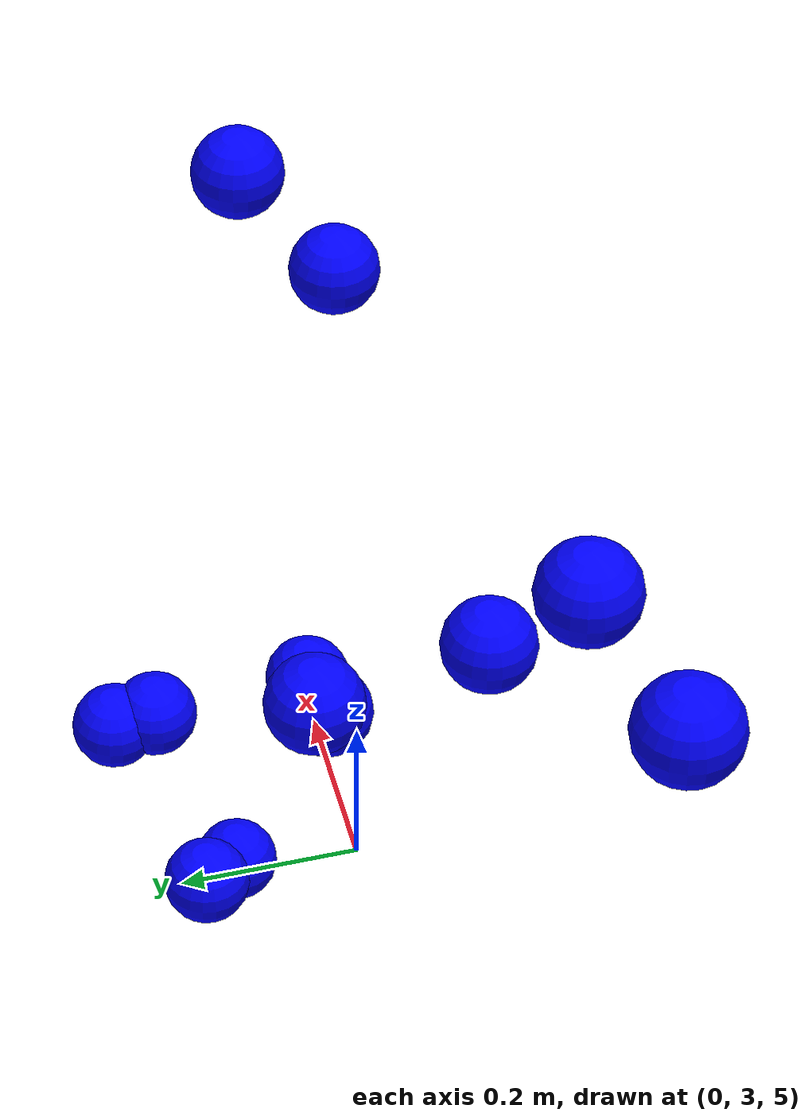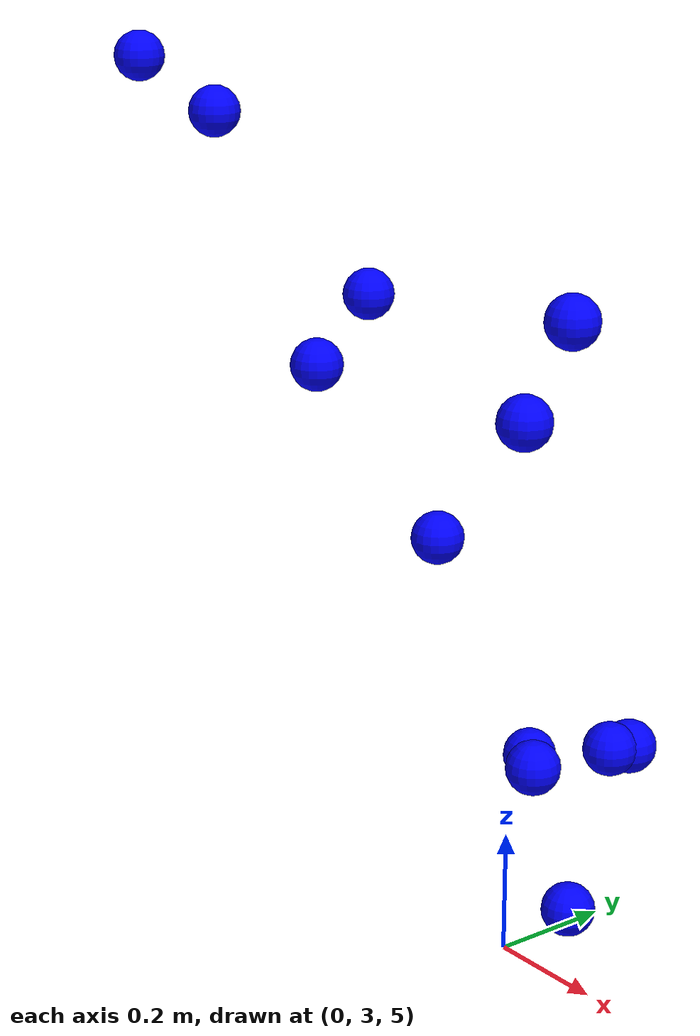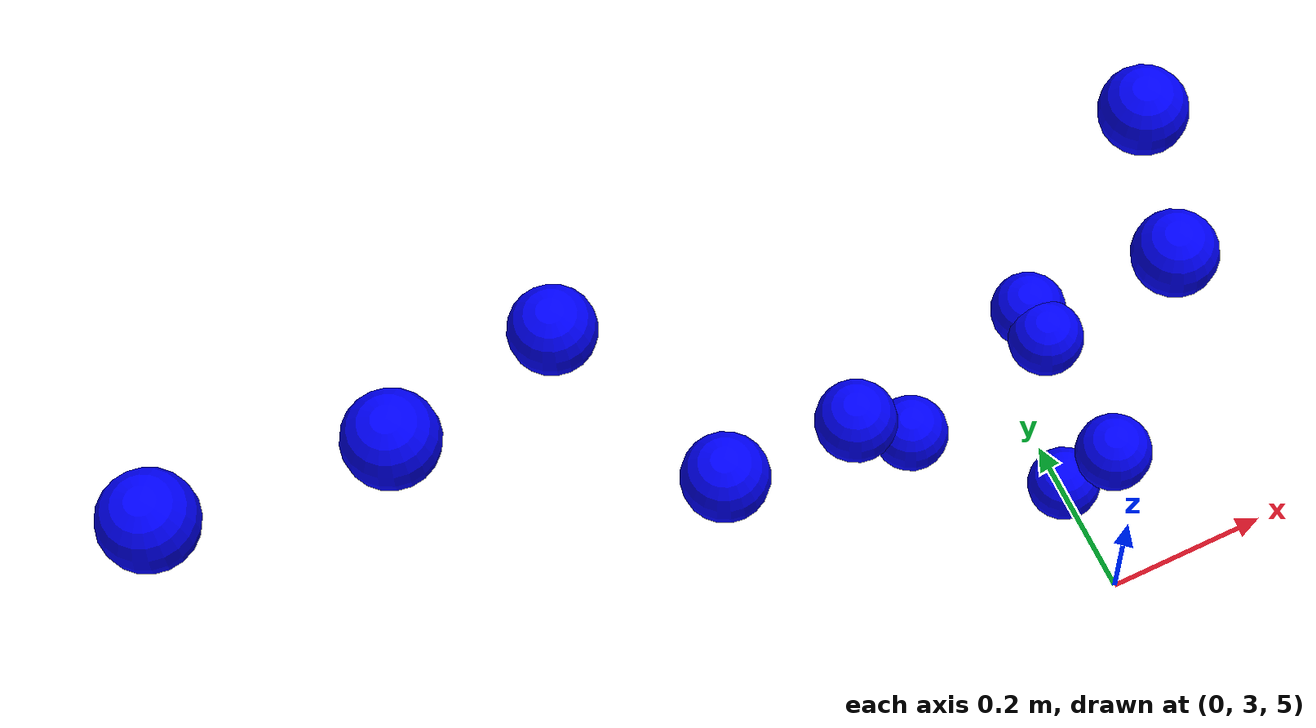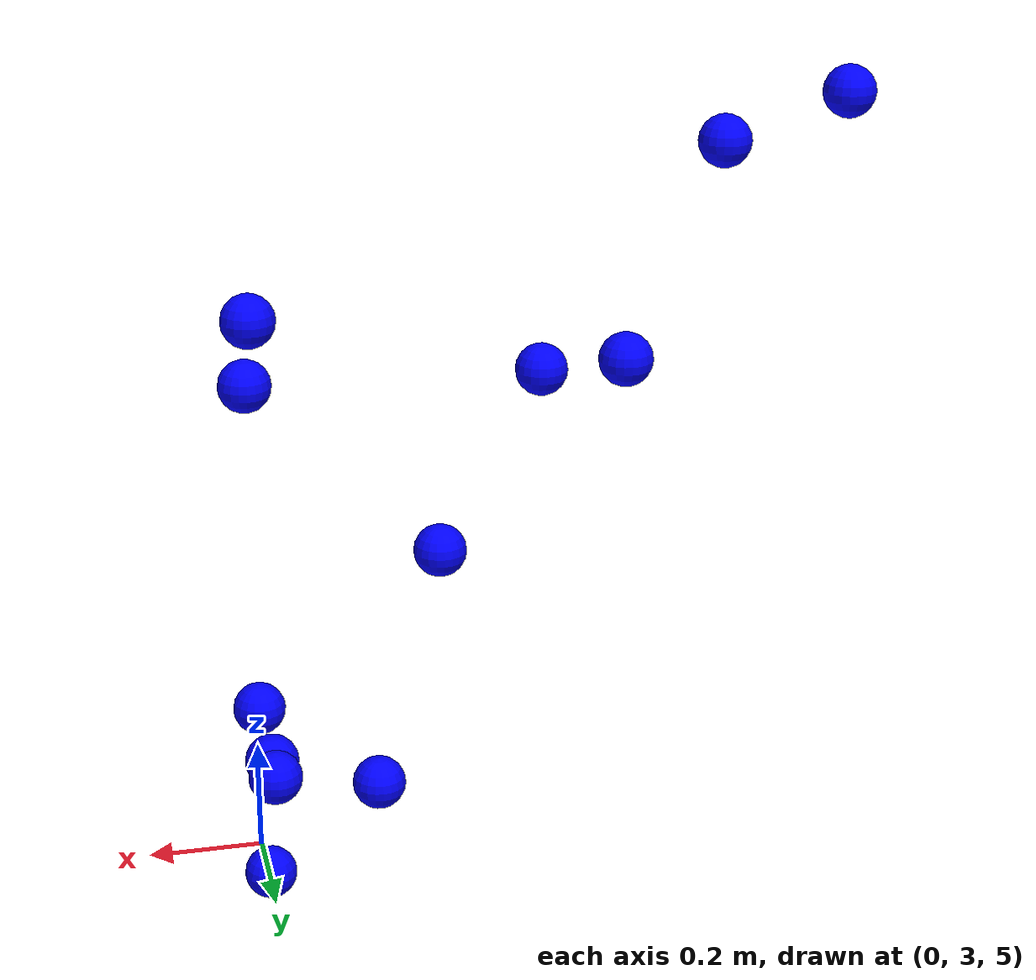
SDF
<sdf version="1.10">
 <world name="sphere">
  <model name="ground_plane">
   <static>true</static>
   <link name="link">
    <collision name="collision">
     <geometry><plane><normal>0 0 1</normal><size>100 100</size></plane></geometry>
    </collision>
    <visual name="visual">
     <geometry><plane><normal>0 0 1</normal><size>100 100</size></plane></geometry>
     <material>
      <ambient>0.800000012 0.800000012 0.800000012 1</ambient>
      <diffuse>0.800000012 0.800000012 0.800000012 1</diffuse>
      <specular>0.800000012 0.800000012 0.800000012 1</specular>
     </material>
    </visual>
    <inertial>
     <mass>1</mass>
     <inertia><ixx>1</ixx><ixy>0</ixy><ixz>0</ixz><iyy>1</iyy><iyz>0</iyz><izz>1</izz></inertia>
    </inertial>
   </link>
  </model>
  <model name="sphere_00">
   <pose>-0.8101000189781189 3.01882004737854 6.2474203109741211 0 0 0</pose>
   <link name="sphere_link">
    <inertial>
     <inertia>
      <ixx>0.10000000000000001</ixx>
      <ixy>0</ixy>
      <ixz>0</ixz>
      <iyy>0.10000000000000001</iyy>
      <iyz>0</iyz>
      <izz>0.10000000000000001</izz>
     </inertia>
     <mass>1</mass>
    </inertial>
    <collision name="sphere_collision">
     <geometry><sphere><radius>0.044999999999999998</radius></sphere></geometry>
    </collision>
    <visual name="sphere_visual">
     <geometry><sphere><radius>0.044999999999999998</radius></sphere></geometry>
     <material><ambient>0 0 1 1</ambient><diffuse>0 0 1 1</diffuse><specular>0 0 1 1</specular></material>
    </visual>
   </link>
   <static>false</static>
   <self_collide>true</self_collide>
  </model>
  <model name="sphere_01">
   <pose>-0.30862641334533691 3.1076400279998779 5.5938301086425781 0 0 0</pose>
   <link name="sphere_link">
    <inertial>
     <inertia>
      <ixx>0.10000000000000001</ixx>
      <ixy>0</ixy>
      <ixz>0</ixz>
      <iyy>0.10000000000000001</iyy>
      <iyz>0</iyz>
      <izz>0.10000000000000001</izz>
     </inertia>
     <mass>1</mass>
    </inertial>
    <collision name="sphere_collision">
     <geometry><sphere><radius>0.044999999999999998</radius></sphere></geometry>
    </collision>
    <visual name="sphere_visual">
     <geometry><sphere><radius>0.044999999999999998</radius></sphere></geometry>
     <material><ambient>0 0 1 1</ambient><diffuse>0 0 1 1</diffuse><specular>0 0 1 1</specular></material>
    </visual>
   </link>
   <static>false</static>
   <self_collide>true</self_collide>
  </model>
  <model name="sphere_02">
   <pose>-0.18142400681972504 3.2076399326324463 5.2198047637939453 0 0 0</pose>
   <link name="sphere_link">
    <inertial>
     <inertia>
      <ixx>0.10000000000000001</ixx>
      <ixy>0</ixy>
      <ixz>0</ixz>
      <iyy>0.10000000000000001</iyy>
      <iyz>0</iyz>
      <izz>0.10000000000000001</izz>
     </inertia>
     <mass>1</mass>
    </inertial>
    <collision name="sphere_collision">
     <geometry><sphere><radius>0.044999999999999998</radius></sphere></geometry>
    </collision>
    <visual name="sphere_visual">
     <geometry><sphere><radius>0.044999999999999998</radius></sphere></geometry>
     <material><ambient>0 0 1 1</ambient><diffuse>0 0 1 1</diffuse><specular>0 0 1 1</specular></material>
    </visual>
   </link>
   <static>false</static>
   <self_collide>true</self_collide>
  </model>
  <model name="sphere_05">
   <pose>0 3.023277759552002 5.8801798820495605 0 0 0</pose>
   <link name="sphere_link">
    <inertial>
     <inertia>
      <ixx>0.10000000000000001</ixx>
      <ixy>0</ixy>
      <ixz>0</ixz>
      <iyy>0.10000000000000001</iyy>
      <iyz>0</iyz>
      <izz>0.10000000000000001</izz>
     </inertia>
     <mass>1</mass>
    </inertial>
    <collision name="sphere_collision">
     <geometry><sphere><radius>0.044999999999999998</radius></sphere></geometry>
    </collision>
    <visual name="sphere_visual">
     <geometry><sphere><radius>0.044999999999999998</radius></sphere></geometry>
     <material><ambient>0 0 1 1</ambient><diffuse>0 0 1 1</diffuse><specular>0 0 1 1</specular></material>
    </visual>
   </link>
   <static>false</static>
   <self_collide>true</self_collide>
  </model>
  <model name="sphere_08">
   <pose>0 3.0543978214263916 5.3013801574707031 0 0 0</pose>
   <link name="sphere_link">
    <inertial>
     <inertia>
      <ixx>0.10000000000000001</ixx>
      <ixy>0</ixy>
      <ixz>0</ixz>
      <iyy>0.10000000000000001</iyy>
      <iyz>0</iyz>
      <izz>0.10000000000000001</izz>
     </inertia>
     <mass>1</mass>
    </inertial>
    <collision name="sphere_collision">
     <geometry><sphere><radius>0.044999999999999998</radius></sphere></geometry>
    </collision>
    <visual name="sphere_visual">
     <geometry><sphere><radius>0.044999999999999998</radius></sphere></geometry>
     <material><ambient>0 0 1 1</ambient><diffuse>0 0 1 1</diffuse><specular>0 0 1 1</specular></material>
    </visual>
   </link>
   <static>false</static>
   <self_collide>true</self_collide>
  </model>
  <model name="sphere_09">
   <pose>-0.50494199991226196 3.0061700344085693 5.8660669326782227 0 0 0</pose>
   <link name="sphere_link">
    <inertial>
     <inertia>
      <ixx>0.10000000000000001</ixx>
      <ixy>0</ixy>
      <ixz>0</ixz>
      <iyy>0.10000000000000001</iyy>
      <iyz>0</iyz>
      <izz>0.10000000000000001</izz>
     </inertia>
     <mass>1</mass>
     <pose>0 0 0.69999999999999996 0 0 0</pose>
    </inertial>
    <collision name="sphere_collision">
     <geometry><sphere><radius>0.044999999999999998</radius></sphere></geometry>
    </collision>
    <visual name="sphere_visual">
     <geometry><sphere><radius>0.044999999999999998</radius></sphere></geometry>
     <material><ambient>0 0 1 1</ambient><diffuse>0 0 1 1</diffuse><specular>0 0 1 1</specular></material>
    </visual>
   </link>
   <static>false</static>
   <self_collide>true</self_collide>
  </model>
  <model name="sphere_10">
   <pose>0 3.2213499546051025 5.2891402244567871 0 0 0</pose>
   <link name="sphere_link">
    <inertial>
     <inertia>
      <ixx>0.10000000000000001</ixx>
      <ixy>0</ixy>
      <ixz>0</ixz>
      <iyy>0.10000000000000001</iyy>
      <iyz>0</iyz>
      <izz>0.10000000000000001</izz>
     </inertia>
     <mass>1</mass>
     <pose>0 0 0.69999999999999996 0 0 0</pose>
    </inertial>
    <collision name="sphere_collision">
     <geometry><sphere><radius>0.044999999999999998</radius></sphere></geometry>
    </collision>
    <visual name="sphere_visual">
     <geometry><sphere><radius>0.044999999999999998</radius></sphere></geometry>
     <material><ambient>0 0 1 1</ambient><diffuse>0 0 1 1</diffuse><specular>0 0 1 1</specular></material>
    </visual>
   </link>
   <static>false</static>
   <self_collide>true</self_collide>
  </model>
  <model name="sphere_13">
   <pose>0 3.2651400566101074 5.282097339630127 0 0 0</pose>
   <link name="sphere_link">
    <inertial>
     <inertia>
      <ixx>0.10000000000000001</ixx>
      <ixy>0</ixy>
      <ixz>0</ixz>
      <iyy>0.10000000000000001</iyy>
      <iyz>0</iyz>
      <izz>0.10000000000000001</izz>
     </inertia>
     <mass>1</mass>
     <pose>0 0 0.69999999999999996 0 0 0</pose>
    </inertial>
    <collision name="sphere_collision">
     <geometry><sphere><radius>0.044999999999999998</radius></sphere></geometry>
    </collision>
    <visual name="sphere_visual">
     <geometry><sphere><radius>0.044999999999999998</radius></sphere></geometry>
     <material><ambient>0 0 1 1</ambient><diffuse>0 0 1 1</diffuse><specular>0 0 1 1</specular></material>
    </visual>
   </link>
   <static>false</static>
   <self_collide>true</self_collide>
  </model>
  <model name="sphere_22">
   <pose>-1.0258899927139282 3.0086886882781982 6.3174500465393066 0 0 0</pose>
   <link name="sphere_link">
    <inertial>
     <inertia>
      <ixx>0.10000000000000001</ixx>
      <ixy>0</ixy>
      <ixz>0</ixz>
      <iyy>0.10000000000000001</iyy>
      <iyz>0</iyz>
      <izz>0.10000000000000001</izz>
     </inertia>
     <mass>1</mass>
     <pose>0 0 0.69999999999999996 0 0 0</pose>
    </inertial>
    <collision name="sphere_collision">
     <geometry><sphere><radius>0.044999999999999998</radius></sphere></geometry>
    </collision>
    <visual name="sphere_visual">
     <geometry><sphere><radius>0.044999999999999998</radius></sphere></geometry>
     <material><ambient>0 0 1 1</ambient><diffuse>0 0 1 1</diffuse><specular>0 0 1 1</specular></material>
    </visual>
   </link>
   <static>false</static>
   <self_collide>true</self_collide>
  </model>
  <model name="sphere_33">
   <pose>-0.60159999132156372 3.1903257369995117 5.940730094909668 0 0 0</pose>
   <link name="sphere_link">
    <inertial>
     <inertia>
      <ixx>0.10000000000000001</ixx>
      <ixy>0</ixy>
      <ixz>0</ixz>
      <iyy>0.10000000000000001</iyy>
      <iyz>0</iyz>
      <izz>0.10000000000000001</izz>
     </inertia>
     <mass>1</mass>
     <pose>0 0 0.69999999999999996 0 0 0</pose>
    </inertial>
    <collision name="sphere_collision">
     <geometry><sphere><radius>0.044999999999999998</radius></sphere></geometry>
    </collision>
    <visual name="sphere_visual">
     <geometry><sphere><radius>0.044999999999999998</radius></sphere></geometry>
     <material><ambient>0 0 1 1</ambient><diffuse>0 0 1 1</diffuse><specular>0 0 1 1</specular></material>
    </visual>
   </link>
   <static>false</static>
   <self_collide>true</self_collide>
  </model>
  <model name="sphere_36">
   <pose>0 3.137521505355835 5.0250701904296875 0 0 0</pose>
   <link name="sphere_link">
    <inertial>
     <inertia>
      <ixx>0.10000000000000001</ixx>
      <ixy>0</ixy>
      <ixz>0</ixz>
      <iyy>0.10000000000000001</iyy>
      <iyz>0</iyz>
      <izz>0.10000000000000001</izz>
     </inertia>
     <mass>1</mass>
     <pose>0 0 0.69999999999999996 0 0 0</pose>
    </inertial>
    <collision name="sphere_collision">
     <geometry><sphere><radius>0.044999999999999998</radius></sphere></geometry>
    </collision>
    <visual name="sphere_visual">
     <geometry><sphere><radius>0.044999999999999998</radius></sphere></geometry>
     <material><ambient>0 0 1 1</ambient><diffuse>0 0 1 1</diffuse><specular>0 0 1 1</specular></material>
    </visual>
   </link>
   <static>false</static>
   <self_collide>true</self_collide>
  </model>
  <model name="sphere_41">
   <pose>0 3.1170649528503418 6.0235199928283691 0 0 0</pose>
   <link name="sphere_link">
    <inertial>
     <inertia>
      <ixx>0.10000000000000001</ixx>
      <ixy>0</ixy>
      <ixz>0</ixz>
      <iyy>0.10000000000000001</iyy>
      <iyz>0</iyz>
      <izz>0.10000000000000001</izz>
     </inertia>
     <mass>1</mass>
     <pose>0 0 0.69999999999999996 0 0 0</pose>
    </inertial>
    <collision name="sphere_collision">
     <geometry><sphere><radius>0.044999999999999998</radius></sphere></geometry>
    </collision>
    <visual name="sphere_visual">
     <geometry><sphere><radius>0.044999999999999998</radius></sphere></geometry>
     <material><ambient>0 0 1 1</ambient><diffuse>0 0 1 1</diffuse><specular>0 0 1 1</specular></material>
    </visual>
   </link>
   <static>false</static>
   <self_collide>true</self_collide>
  </model>
 </world>
</sdf>
